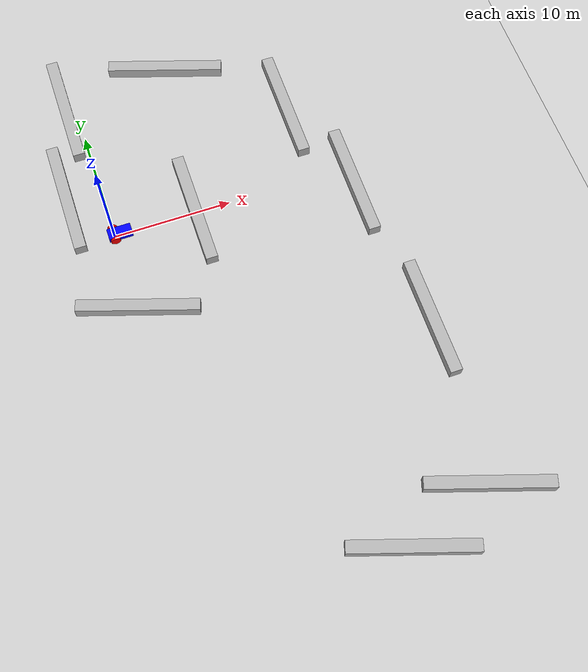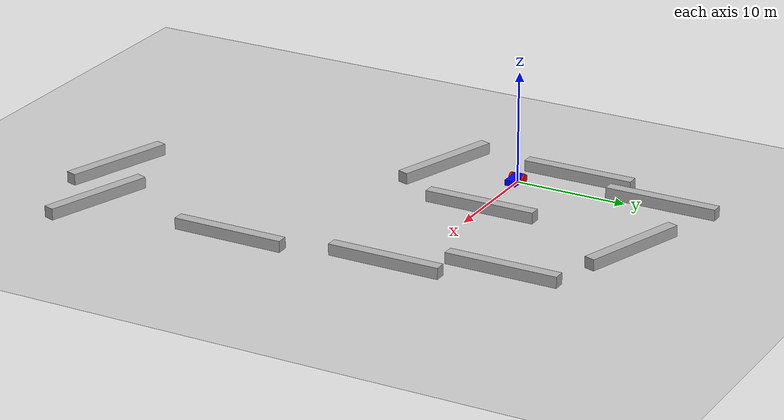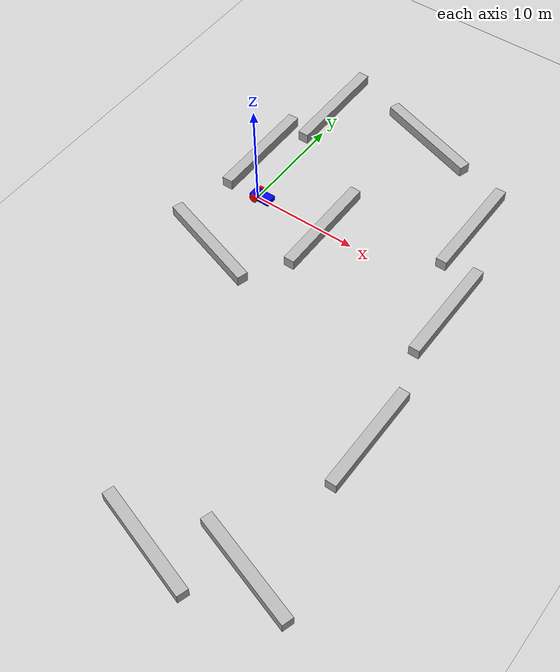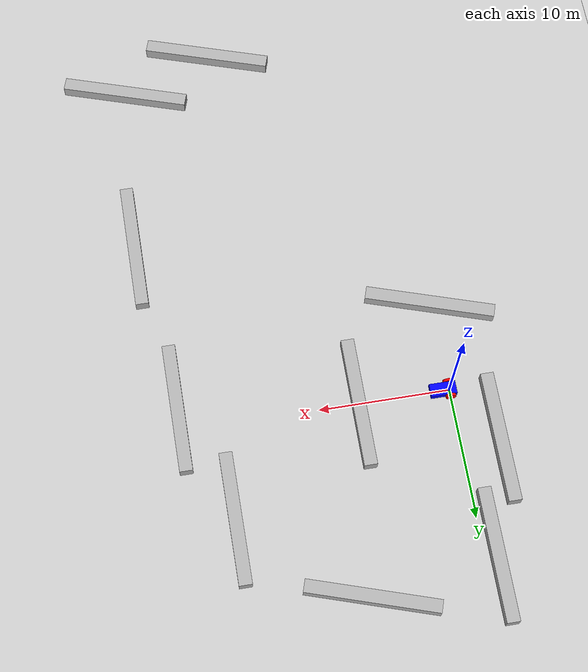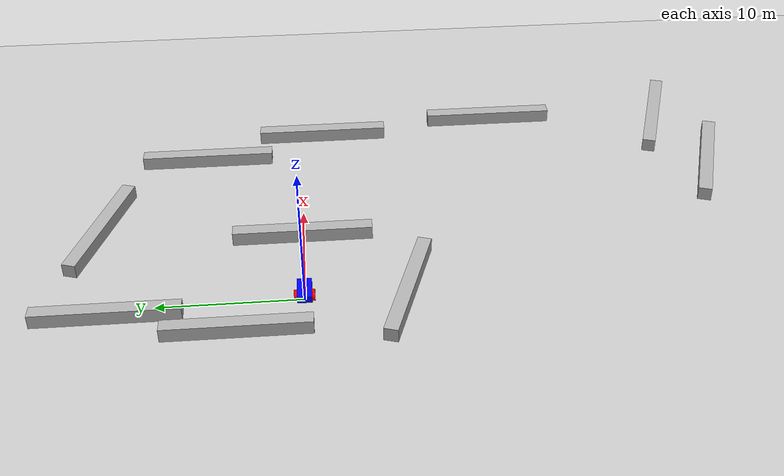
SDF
<sdf version='1.9'>
  <world name='car_world'>
    <physics name='1ms' type='ignored'>
      <max_step_size>0.001</max_step_size>
      <real_time_factor>1</real_time_factor>
      <real_time_update_rate>1000</real_time_update_rate>
    </physics>
    <plugin name='ignition::gazebo::systems::Physics' filename='ignition-gazebo-physics-system'/>
    <plugin name='ignition::gazebo::systems::UserCommands' filename='ignition-gazebo-user-commands-system'/>
    <plugin name='ignition::gazebo::systems::SceneBroadcaster' filename='ignition-gazebo-scene-broadcaster-system'/>
    <plugin name='gz::sim::systems::Sensors' filename='ignition-gazebo-sensors-system'>
      <render_engine>ogre2</render_engine>
    </plugin>
    <scene>
      <ambient>1 1 1 1</ambient>
      <background>0.8 0.8 0.8 1</background>
      <grid>true</grid>
      <shadows>true</shadows>
    </scene>
    <gravity>0 0 -9.8</gravity>
    <magnetic_field>6e-06 2.3e-05 -4.2e-05</magnetic_field>
    <atmosphere type='adiabatic'/>
    <model name='ground_plane'>
      <static>true</static>
      <link name='link'>
        <collision name='collision'>
          <geometry>
            <plane>
              <normal>0 0 1</normal>
              <size>1 1</size>
            </plane>
          </geometry>
          <surface>
            <friction>
              <ode/>
            </friction>
            <bounce/>
            <contact/>
          </surface>
        </collision>
        <visual name='visual'>
          <geometry>
            <plane>
              <normal>0 0 1</normal>
              <size>100 100</size>
            </plane>
          </geometry>
          <material>
            <ambient>0.8 0.8 0.8 1</ambient>
            <diffuse>0.8 0.8 0.8 1</diffuse>
            <specular>0.8 0.8 0.8 1</specular>
          </material>
        </visual>
        <pose>0 0 0 0 -0 0</pose>
        <inertial>
          <pose>0 0 0 0 -0 0</pose>
          <mass>1</mass>
          <inertia>
            <ixx>1</ixx>
            <ixy>0</ixy>
            <ixz>0</ixz>
            <iyy>1</iyy>
            <iyz>0</iyz>
            <izz>1</izz>
          </inertia>
        </inertial>
        <enable_wind>false</enable_wind>
      </link>
      <pose>0 0 0 0 -0 0</pose>
      <self_collide>false</self_collide>
    </model>
    <model name='vehicle_blue' canonical_link='chassis'>
      <pose>-1e-06 -0 9e-06 0 7e-06 1e-06</pose>
      <link name='chassis'>
        <pose>0.5 0 0.4 0 -0 0</pose>
        <inertial>
          <mass>1.14395</mass>
          <inertia>
            <ixx>0.095328999999999997</ixx>
            <ixy>0</ixy>
            <ixz>0</ixz>
            <iyy>0.38131700000000002</iyy>
            <iyz>0</iyz>
            <izz>0.47664600000000001</izz>
          </inertia>
          <pose>0 0 0 0 -0 0</pose>
        </inertial>
        <visual name='visual'>
          <geometry>
            <box>
              <size>2 1 0.5</size>
            </box>
          </geometry>
          <material>
            <ambient>0 0 1 1</ambient>
            <diffuse>0 0 1 1</diffuse>
            <specular>0 0 1 1</specular>
          </material>
        </visual>
        <collision name='collision'>
          <geometry>
            <box>
              <size>2 1 0.5</size>
            </box>
          </geometry>
          <surface>
            <friction>
              <ode/>
            </friction>
            <bounce/>
            <contact/>
          </surface>
        </collision>
        <enable_wind>false</enable_wind>
        <sensor name='gpu_lidar_right' type='gpu_lidar'>
          <pose>0.8 -0.4 0.5 0 -0 0</pose>
          <topic>lidar_right</topic>
          <update_rate>10</update_rate>
          <enable_metrics>false</enable_metrics>
          <lidar>
            <scan>
              <horizontal>
                <samples>1</samples>
                <resolution>1</resolution>
                <min_angle>0</min_angle>
                <max_angle>0</max_angle>
              </horizontal>
              <vertical>
                <samples>1</samples>
                <min_angle>0</min_angle>
                <max_angle>0</max_angle>
                <resolution>0.01</resolution>
              </vertical>
            </scan>
            <range>
              <min>0.080000000000000002</min>
              <max>30</max>
              <resolution>0.01</resolution>
            </range>
            <noise>
              <type>none</type>
              <mean>0</mean>
              <stddev>0</stddev>
            </noise>
            <visibility_mask>4294967295</visibility_mask>
          </lidar>
        </sensor>
        <sensor name='gpu_lidar_left' type='gpu_lidar'>
          <pose>0.8 0.4 0.5 0 -0 0</pose>
          <topic>lidar_left</topic>
          <update_rate>10</update_rate>
          <enable_metrics>false</enable_metrics>
          <lidar>
            <scan>
              <horizontal>
                <samples>1</samples>
                <resolution>1</resolution>
                <min_angle>0</min_angle>
                <max_angle>0</max_angle>
              </horizontal>
              <vertical>
                <samples>1</samples>
                <min_angle>0</min_angle>
                <max_angle>0</max_angle>
                <resolution>0.01</resolution>
              </vertical>
            </scan>
            <range>
              <min>0.080000000000000002</min>
              <max>30</max>
              <resolution>0.01</resolution>
            </range>
            <noise>
              <type>none</type>
              <mean>0</mean>
              <stddev>0</stddev>
            </noise>
            <visibility_mask>4294967295</visibility_mask>
          </lidar>
        </sensor>
      </link>
      <frame name='lidar_frame' attached_to='chassis'>
        <pose>0.8 0 0.5 0 0 0</pose>
      </frame>
      <link name='left_wheel'>
        <pose>0 0.6 0.400001 -1.5707 -4e-06 -0</pose>
        <inertial>
          <mass>1</mass>
          <inertia>
            <ixx>0.043333000000000003</ixx>
            <ixy>0</ixy>
            <ixz>0</ixz>
            <iyy>0.043333000000000003</iyy>
            <iyz>0</iyz>
            <izz>0.080000000000000002</izz>
          </inertia>
          <pose>0 0 0 0 -0 0</pose>
        </inertial>
        <visual name='visual'>
          <geometry>
            <cylinder>
              <radius>0.40000000000000002</radius>
              <length>0.20000000000000001</length>
            </cylinder>
          </geometry>
          <material>
            <ambient>1 0 0 1</ambient>
            <diffuse>1 0 0 1</diffuse>
            <specular>1 0 0 1</specular>
          </material>
        </visual>
        <collision name='collision'>
          <geometry>
            <cylinder>
              <radius>0.40000000000000002</radius>
              <length>0.20000000000000001</length>
            </cylinder>
          </geometry>
          <surface>
            <friction>
              <ode/>
            </friction>
            <bounce/>
            <contact/>
          </surface>
        </collision>
        <enable_wind>false</enable_wind>
      </link>
      <link name='right_wheel'>
        <pose>0 -0.6 0.400001 -1.5707 0 -0</pose>
        <inertial>
          <mass>1</mass>
          <inertia>
            <ixx>0.043333000000000003</ixx>
            <ixy>0</ixy>
            <ixz>0</ixz>
            <iyy>0.043333000000000003</iyy>
            <iyz>0</iyz>
            <izz>0.080000000000000002</izz>
          </inertia>
          <pose>0 0 0 0 -0 0</pose>
        </inertial>
        <visual name='visual'>
          <geometry>
            <cylinder>
              <radius>0.40000000000000002</radius>
              <length>0.20000000000000001</length>
            </cylinder>
          </geometry>
          <material>
            <ambient>1 0 0 1</ambient>
            <diffuse>1 0 0 1</diffuse>
            <specular>1 0 0 1</specular>
          </material>
        </visual>
        <collision name='collision'>
          <geometry>
            <cylinder>
              <radius>0.40000000000000002</radius>
              <length>0.20000000000000001</length>
            </cylinder>
          </geometry>
          <surface>
            <friction>
              <ode/>
            </friction>
            <bounce/>
            <contact/>
          </surface>
        </collision>
        <enable_wind>false</enable_wind>
      </link>
      <link name='caster'>
        <pose>1.3 -0 0.2 -0 -7e-06 -1e-06</pose>
        <inertial>
          <mass>1</mass>
          <inertia>
            <ixx>0.016</ixx>
            <ixy>0</ixy>
            <ixz>0</ixz>
            <iyy>0.016</iyy>
            <iyz>0</iyz>
            <izz>0.016</izz>
          </inertia>
          <pose>0 0 0 0 -0 0</pose>
        </inertial>
        <visual name='visual'>
          <geometry>
            <sphere>
              <radius>0.20000000000000001</radius>
            </sphere>
          </geometry>
          <material>
            <ambient>0 1 0 1</ambient>
            <diffuse>0 1 0 1</diffuse>
            <specular>0 1 0 1</specular>
          </material>
        </visual>
        <collision name='collision'>
          <geometry>
            <sphere>
              <radius>0.20000000000000001</radius>
            </sphere>
          </geometry>
          <surface>
            <friction>
              <ode/>
            </friction>
            <bounce/>
            <contact/>
          </surface>
        </collision>
        <enable_wind>false</enable_wind>
      </link>
      <joint name='left_wheel_joint' type='revolute'>
        <pose>0 0 0 0 -0 0</pose>
        <parent>chassis</parent>
        <child>left_wheel</child>
        <axis>
          <xyz>0 9.6e-05 1</xyz>
          <limit>
            <lower>-1.7976900000000001e+308</lower>
            <upper>1.7976900000000001e+308</upper>
            <effort>inf</effort>
            <velocity>inf</velocity>
            <stiffness>100000000</stiffness>
            <dissipation>1</dissipation>
          </limit>
          <dynamics>
            <spring_reference>0</spring_reference>
            <spring_stiffness>0</spring_stiffness>
            <damping>0</damping>
            <friction>0</friction>
          </dynamics>
        </axis>
      </joint>
      <joint name='right_wheel_joint' type='revolute'>
        <pose>0 0 0 0 -0 0</pose>
        <parent>chassis</parent>
        <child>right_wheel</child>
        <axis>
          <xyz>0 9.6e-05 1</xyz>
          <limit>
            <lower>-1.7976900000000001e+308</lower>
            <upper>1.7976900000000001e+308</upper>
            <effort>inf</effort>
            <velocity>inf</velocity>
            <stiffness>100000000</stiffness>
            <dissipation>1</dissipation>
          </limit>
          <dynamics>
            <spring_reference>0</spring_reference>
            <spring_stiffness>0</spring_stiffness>
            <damping>0</damping>
            <friction>0</friction>
          </dynamics>
        </axis>
      </joint>
      <joint name='caster_wheel' type='ball'>
        <parent>chassis</parent>
        <child>caster</child>
        <pose>0 0 0 0 -0 0</pose>
      </joint>
      <plugin name='ignition::gazebo::systems::DiffDrive' filename='libignition-gazebo-diff-drive-system.so'>
        <left_joint>left_wheel_joint</left_joint>
        <right_joint>right_wheel_joint</right_joint>
        <wheel_separation>1.2</wheel_separation>
        <wheel_radius>0.4</wheel_radius>
        <odom_publish_frequency>1</odom_publish_frequency>
        <topic>cmd_vel</topic>
      </plugin>
      <static>false</static>
      <self_collide>false</self_collide>
    </model>
    <model name='box'>
      <pose>7 0.07 0.5 -0 -0 -0</pose>
      <link name='box_link'>
        <inertial>
          <inertia>
            <ixx>0.16666</ixx>
            <ixy>0</ixy>
            <ixz>0</ixz>
            <iyy>0.16666</iyy>
            <iyz>0</iyz>
            <izz>0.16666</izz>
          </inertia>
          <mass>1</mass>
          <pose>0 0 0 0 -0 0</pose>
        </inertial>
        <collision name='box_collision'>
          <geometry>
            <box>
              <size>1 10 1</size>
            </box>
          </geometry>
          <surface>
            <friction>
              <ode/>
            </friction>
            <bounce/>
            <contact/>
          </surface>
        </collision>
        <visual name='box_visual'>
          <geometry>
            <box>
              <size>1 10 1</size>
            </box>
          </geometry>
          <material>
            <ambient>0.3 0.3 0.3 1</ambient>
            <diffuse>0.7 0.7 0.7 1</diffuse>
            <specular>1 1 1 1</specular>
          </material>
        </visual>
        <pose>0 0 0 0 -0 0</pose>
        <enable_wind>false</enable_wind>
      </link>
      <static>false</static>
      <self_collide>false</self_collide>
    </model>
    <model name='box_1'>
      <pose>8.63308 14.6131 0.5 0 0 -1.88318</pose>
      <link name='box_link'>
        <inertial>
          <inertia>
            <ixx>0.16666</ixx>
            <ixy>0</ixy>
            <ixz>0</ixz>
            <iyy>0.16666</iyy>
            <iyz>0</iyz>
            <izz>0.16666</izz>
          </inertia>
          <mass>1</mass>
          <pose>0 0 0 0 -0 0</pose>
        </inertial>
        <collision name='box_collision'>
          <geometry>
            <box>
              <size>1 10 1</size>
            </box>
          </geometry>
          <surface>
            <friction>
              <ode/>
            </friction>
            <bounce/>
            <contact/>
          </surface>
        </collision>
        <visual name='box_visual'>
          <geometry>
            <box>
              <size>1 10 1</size>
            </box>
          </geometry>
          <material>
            <ambient>0.3 0.3 0.3 1</ambient>
            <diffuse>0.7 0.7 0.7 1</diffuse>
            <specular>1 1 1 1</specular>
          </material>
        </visual>
        <pose>0 0 0 0 -0 0</pose>
        <enable_wind>false</enable_wind>
      </link>
      <static>false</static>
      <self_collide>false</self_collide>
    </model>
    <model name='box_2'>
      <pose>17.4966 7.39533 0.5 -0 -0 0</pose>
      <link name='box_link'>
        <inertial>
          <inertia>
            <ixx>0.16666</ixx>
            <ixy>0</ixy>
            <ixz>0</ixz>
            <iyy>0.16666</iyy>
            <iyz>0</iyz>
            <izz>0.16666</izz>
          </inertia>
          <mass>1</mass>
          <pose>0 0 0 0 -0 0</pose>
        </inertial>
        <collision name='box_collision'>
          <geometry>
            <box>
              <size>1 10 1</size>
            </box>
          </geometry>
          <surface>
            <friction>
              <ode/>
            </friction>
            <bounce/>
            <contact/>
          </surface>
        </collision>
        <visual name='box_visual'>
          <geometry>
            <box>
              <size>1 10 1</size>
            </box>
          </geometry>
          <material>
            <ambient>0.3 0.3 0.3 1</ambient>
            <diffuse>0.7 0.7 0.7 1</diffuse>
            <specular>1 1 1 1</specular>
          </material>
        </visual>
        <pose>0 0 0 0 -0 0</pose>
        <enable_wind>false</enable_wind>
      </link>
      <static>false</static>
      <self_collide>false</self_collide>
    </model>
    <model name='box_2_1'>
      <pose>20.5464 -1.65358 0.5 -0 -0 -0</pose>
      <link name='box_link'>
        <inertial>
          <inertia>
            <ixx>0.16666</ixx>
            <ixy>0</ixy>
            <ixz>0</ixz>
            <iyy>0.16666</iyy>
            <iyz>0</iyz>
            <izz>0.16666</izz>
          </inertia>
          <mass>1</mass>
          <pose>0 0 0 0 -0 0</pose>
        </inertial>
        <collision name='box_collision'>
          <geometry>
            <box>
              <size>1 10 1</size>
            </box>
          </geometry>
          <surface>
            <friction>
              <ode/>
            </friction>
            <bounce/>
            <contact/>
          </surface>
        </collision>
        <visual name='box_visual'>
          <geometry>
            <box>
              <size>1 10 1</size>
            </box>
          </geometry>
          <material>
            <ambient>0.3 0.3 0.3 1</ambient>
            <diffuse>0.7 0.7 0.7 1</diffuse>
            <specular>1 1 1 1</specular>
          </material>
        </visual>
        <pose>0 0 0 0 -0 0</pose>
        <enable_wind>false</enable_wind>
      </link>
      <static>false</static>
      <self_collide>false</self_collide>
    </model>
    <model name='box_2_1_1'>
      <pose>22.0728 -15.3829 0.5 -0 -0 -0</pose>
      <link name='box_link'>
        <inertial>
          <inertia>
            <ixx>0.16666</ixx>
            <ixy>0</ixy>
            <ixz>0</ixz>
            <iyy>0.16666</iyy>
            <iyz>0</iyz>
            <izz>0.16666</izz>
          </inertia>
          <mass>1</mass>
          <pose>0 0 0 0 -0 0</pose>
        </inertial>
        <collision name='box_collision'>
          <geometry>
            <box>
              <size>1 10 1</size>
            </box>
          </geometry>
          <surface>
            <friction>
              <ode/>
            </friction>
            <bounce/>
            <contact/>
          </surface>
        </collision>
        <visual name='box_visual'>
          <geometry>
            <box>
              <size>1 10 1</size>
            </box>
          </geometry>
          <material>
            <ambient>0.3 0.3 0.3 1</ambient>
            <diffuse>0.7 0.7 0.7 1</diffuse>
            <specular>1 1 1 1</specular>
          </material>
        </visual>
        <pose>0 0 0 0 -0 0</pose>
        <enable_wind>false</enable_wind>
      </link>
      <static>false</static>
      <self_collide>false</self_collide>
    </model>
    <model name='box_1_1'>
      <pose>21.0643 -29.2017 0.5 -0 -0 -1.88318</pose>
      <link name='box_link'>
        <inertial>
          <inertia>
            <ixx>0.16666</ixx>
            <ixy>0</ixy>
            <ixz>0</ixz>
            <iyy>0.16666</iyy>
            <iyz>0</iyz>
            <izz>0.16666</izz>
          </inertia>
          <mass>1</mass>
          <pose>0 0 0 0 -0 0</pose>
        </inertial>
        <collision name='box_collision'>
          <geometry>
            <box>
              <size>1 10 1</size>
            </box>
          </geometry>
          <surface>
            <friction>
              <ode/>
            </friction>
            <bounce/>
            <contact/>
          </surface>
        </collision>
        <visual name='box_visual'>
          <geometry>
            <box>
              <size>1 10 1</size>
            </box>
          </geometry>
          <material>
            <ambient>0.3 0.3 0.3 1</ambient>
            <diffuse>0.7 0.7 0.7 1</diffuse>
            <specular>1 1 1 1</specular>
          </material>
        </visual>
        <pose>0 0 0 0 -0 0</pose>
        <enable_wind>false</enable_wind>
      </link>
      <static>false</static>
      <self_collide>false</self_collide>
    </model>
    <model name='box_1_1_1'>
      <pose>13.9658 -31.7273 0.5 -0 0 -1.88318</pose>
      <link name='box_link'>
        <inertial>
          <inertia>
            <ixx>0.16666</ixx>
            <ixy>0</ixy>
            <ixz>0</ixz>
            <iyy>0.16666</iyy>
            <iyz>0</iyz>
            <izz>0.16666</izz>
          </inertia>
          <mass>1</mass>
          <pose>0 0 0 0 -0 0</pose>
        </inertial>
        <collision name='box_collision'>
          <geometry>
            <box>
              <size>1 10 1</size>
            </box>
          </geometry>
          <surface>
            <friction>
              <ode/>
            </friction>
            <bounce/>
            <contact/>
          </surface>
        </collision>
        <visual name='box_visual'>
          <geometry>
            <box>
              <size>1 10 1</size>
            </box>
          </geometry>
          <material>
            <ambient>0.3 0.3 0.3 1</ambient>
            <diffuse>0.7 0.7 0.7 1</diffuse>
            <specular>1 1 1 1</specular>
          </material>
        </visual>
        <pose>0 0 0 0 -0 0</pose>
        <enable_wind>false</enable_wind>
      </link>
      <static>false</static>
      <self_collide>false</self_collide>
    </model>
    <model name='box_2_2'>
      <pose>-0.874148 13.0695 0.5 -0 -0 -0</pose>
      <link name='box_link'>
        <inertial>
          <inertia>
            <ixx>0.16666</ixx>
            <ixy>0</ixy>
            <ixz>0</ixz>
            <iyy>0.16666</iyy>
            <iyz>0</iyz>
            <izz>0.16666</izz>
          </inertia>
          <mass>1</mass>
          <pose>0 0 0 0 -0 0</pose>
        </inertial>
        <collision name='box_collision'>
          <geometry>
            <box>
              <size>1 10 1</size>
            </box>
          </geometry>
          <surface>
            <friction>
              <ode/>
            </friction>
            <bounce/>
            <contact/>
          </surface>
        </collision>
        <visual name='box_visual'>
          <geometry>
            <box>
              <size>1 10 1</size>
            </box>
          </geometry>
          <material>
            <ambient>0.3 0.3 0.3 1</ambient>
            <diffuse>0.7 0.7 0.7 1</diffuse>
            <specular>1 1 1 1</specular>
          </material>
        </visual>
        <pose>0 0 0 0 -0 0</pose>
        <enable_wind>false</enable_wind>
      </link>
      <static>false</static>
      <self_collide>false</self_collide>
    </model>
    <model name='box_2_3'>
      <pose>-2.94089 4.41915 0.5 -0 -0 -0</pose>
      <link name='box_link'>
        <inertial>
          <inertia>
            <ixx>0.16666</ixx>
            <ixy>0</ixy>
            <ixz>0</ixz>
            <iyy>0.16666</iyy>
            <iyz>0</iyz>
            <izz>0.16666</izz>
          </inertia>
          <mass>1</mass>
          <pose>0 0 0 0 -0 0</pose>
        </inertial>
        <collision name='box_collision'>
          <geometry>
            <box>
              <size>1 10 1</size>
            </box>
          </geometry>
          <surface>
            <friction>
              <ode/>
            </friction>
            <bounce/>
            <contact/>
          </surface>
        </collision>
        <visual name='box_visual'>
          <geometry>
            <box>
              <size>1 10 1</size>
            </box>
          </geometry>
          <material>
            <ambient>0.3 0.3 0.3 1</ambient>
            <diffuse>0.7 0.7 0.7 1</diffuse>
            <specular>1 1 1 1</specular>
          </material>
        </visual>
        <pose>0 0 0 0 -0 0</pose>
        <enable_wind>false</enable_wind>
      </link>
      <static>false</static>
      <self_collide>false</self_collide>
    </model>
    <model name='box_1_2'>
      <pose>0.140842 -7.01766 0.5 0 -0 -1.88318</pose>
      <link name='box_link'>
        <inertial>
          <inertia>
            <ixx>0.16666</ixx>
            <ixy>0</ixy>
            <ixz>0</ixz>
            <iyy>0.16666</iyy>
            <iyz>0</iyz>
            <izz>0.16666</izz>
          </inertia>
          <mass>1</mass>
          <pose>0 0 0 0 -0 0</pose>
        </inertial>
        <collision name='box_collision'>
          <geometry>
            <box>
              <size>1 10 1</size>
            </box>
          </geometry>
          <surface>
            <friction>
              <ode/>
            </friction>
            <bounce/>
            <contact/>
          </surface>
        </collision>
        <visual name='box_visual'>
          <geometry>
            <box>
              <size>1 10 1</size>
            </box>
          </geometry>
          <material>
            <ambient>0.3 0.3 0.3 1</ambient>
            <diffuse>0.7 0.7 0.7 1</diffuse>
            <specular>1 1 1 1</specular>
          </material>
        </visual>
        <pose>0 0 0 0 -0 0</pose>
        <enable_wind>false</enable_wind>
      </link>
      <static>false</static>
      <self_collide>false</self_collide>
    </model>
  </world>
</sdf>
